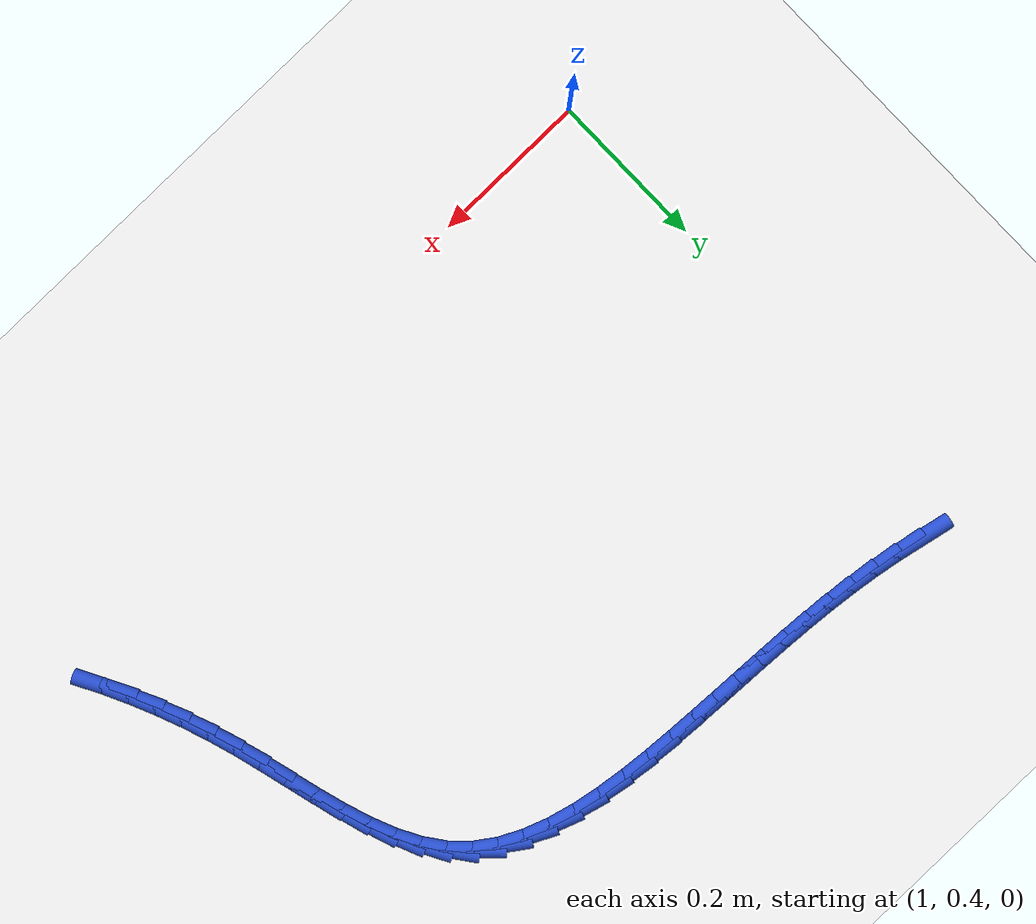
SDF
<sdf version="1.6">
 <world name="default">
  <model name="ground_plane">
   <static>1</static>
   <link name="link">
    <collision name="collision">
     <geometry><plane><normal>0 0 1</normal><size>100 100</size></plane></geometry>
     <surface><friction><ode><mu>100</mu><mu2>50</mu2></ode></friction></surface>
    </collision>
    <visual name="visual">
     <cast_shadows>0</cast_shadows>
     <geometry><plane><normal>0 0 1</normal><size>100 100</size></plane></geometry>
     <material>
      <script><uri>file://media/materials/scripts/gazebo.material</uri><name>Gazebo/WhiteGlow</name></script>
     </material>
    </visual>
   </link>
  </model>
  <model name="line">
   <link name="link_49">
    <pose>1.0536152017967901 1.056178405500555 0.01 0 1.57 -0.2039931108099421</pose>
    <collision name="collision">
     <geometry><cylinder><radius>0.01</radius><length>0.08</length></cylinder></geometry>
    </collision>
    <visual name="visual">
     <material>
      <script><name>Gazebo/Blue</name><uri>file://media/materials/scripts/gazebo.material</uri></script>
     </material>
     <geometry><cylinder><radius>0.01</radius><length>0.08</length></cylinder></geometry>
    </visual>
   </link>
   <link name="link_50">
    <pose>1.0871136379834587 1.0492485632865867 0.01 0 1.57 -0.16918378252128569</pose>
    <collision name="collision">
     <geometry><cylinder><radius>0.01</radius><length>0.08</length></cylinder></geometry>
    </collision>
    <visual name="visual">
     <material>
      <script><name>Gazebo/Blue</name><uri>file://media/materials/scripts/gazebo.material</uri></script>
     </material>
     <geometry><cylinder><radius>0.01</radius><length>0.08</length></cylinder></geometry>
    </visual>
   </link>
   <link name="link_51">
    <pose>1.1204045993406824 1.0435619120764832 0.01 0 1.57 -0.13534197490541341</pose>
    <collision name="collision">
     <geometry><cylinder><radius>0.01</radius><length>0.08</length></cylinder></geometry>
    </collision>
    <visual name="visual">
     <material>
      <script><name>Gazebo/Blue</name><uri>file://media/materials/scripts/gazebo.material</uri></script>
     </material>
     <geometry><cylinder><radius>0.01</radius><length>0.08</length></cylinder></geometry>
    </visual>
   </link>
   <link name="link_52">
    <pose>1.1535728276952377 1.0390452468809621 0.01 0 1.57 -0.10612881740557806</pose>
    <collision name="collision">
     <geometry><cylinder><radius>0.01</radius><length>0.08</length></cylinder></geometry>
    </collision>
    <visual name="visual">
     <material>
      <script><name>Gazebo/Blue</name><uri>file://media/materials/scripts/gazebo.material</uri></script>
     </material>
     <geometry><cylinder><radius>0.01</radius><length>0.08</length></cylinder></geometry>
    </visual>
   </link>
   <link name="link_53">
    <pose>1.186726121602748 1.0355134571384534 0.01 0 1.57 -0.08199142908092878</pose>
    <collision name="collision">
     <geometry><cylinder><radius>0.01</radius><length>0.08</length></cylinder></geometry>
    </collision>
    <visual name="visual">
     <material>
      <script><name>Gazebo/Blue</name><uri>file://media/materials/scripts/gazebo.material</uri></script>
     </material>
     <geometry><cylinder><radius>0.01</radius><length>0.08</length></cylinder></geometry>
    </visual>
   </link>
   <link name="link_54">
    <pose>1.2199722796188368 1.0327814322873867 0.01 0 1.57 -0.06322121916378484</pose>
    <collision name="collision">
     <geometry><cylinder><radius>0.01</radius><length>0.08</length></cylinder></geometry>
    </collision>
    <visual name="visual">
     <material>
      <script><name>Gazebo/Blue</name><uri>file://media/materials/scripts/gazebo.material</uri></script>
     </material>
     <geometry><cylinder><radius>0.01</radius><length>0.08</length></cylinder></geometry>
    </visual>
   </link>
   <link name="link_55">
    <pose>1.2534191002991268 1.0306640617661924 0.01 0 1.57 -0.049960247332221645</pose>
    <collision name="collision">
     <geometry><cylinder><radius>0.01</radius><length>0.08</length></cylinder></geometry>
    </collision>
    <visual name="visual">
     <material>
      <script><name>Gazebo/Blue</name><uri>file://media/materials/scripts/gazebo.material</uri></script>
     </material>
     <geometry><cylinder><radius>0.01</radius><length>0.08</length></cylinder></geometry>
    </visual>
   </link>
   <link name="link_56">
    <pose>1.2871743821992425 1.0289762350132998 0.01 0 1.57 -0.04221454360005864</pose>
    <collision name="collision">
     <geometry><cylinder><radius>0.01</radius><length>0.08</length></cylinder></geometry>
    </collision>
    <visual name="visual">
     <material>
      <script><name>Gazebo/Blue</name><uri>file://media/materials/scripts/gazebo.material</uri></script>
     </material>
     <geometry><cylinder><radius>0.01</radius><length>0.08</length></cylinder></geometry>
    </visual>
   </link>
   <link name="link_57">
    <pose>1.321345923874806 1.0275328414671394 0.01 0 1.57 -0.03987068725952909</pose>
    <collision name="collision">
     <geometry><cylinder><radius>0.01</radius><length>0.08</length></cylinder></geometry>
    </collision>
    <visual name="visual">
     <material>
      <script><name>Gazebo/Blue</name><uri>file://media/materials/scripts/gazebo.material</uri></script>
     </material>
     <geometry><cylinder><radius>0.01</radius><length>0.08</length></cylinder></geometry>
    </visual>
   </link>
   <link name="link_58">
    <pose>1.356041523881441 1.0261487705661412 0.01 0 1.57 -0.04271296731066947</pose>
    <collision name="collision">
     <geometry><cylinder><radius>0.01</radius><length>0.08</length></cylinder></geometry>
    </collision>
    <visual name="visual">
     <material>
      <script><name>Gazebo/Blue</name><uri>file://media/materials/scripts/gazebo.material</uri></script>
     </material>
     <geometry><cylinder><radius>0.01</radius><length>0.08</length></cylinder></geometry>
    </visual>
   </link>
   <link name="link_59">
    <pose>1.3913689807747713 1.0246389117487353 0.01 0 1.57 -0.0504639386554917</pose>
    <collision name="collision">
     <geometry><cylinder><radius>0.01</radius><length>0.08</length></cylinder></geometry>
    </collision>
    <visual name="visual">
     <material>
      <script><name>Gazebo/Blue</name><uri>file://media/materials/scripts/gazebo.material</uri></script>
     </material>
     <geometry><cylinder><radius>0.01</radius><length>0.08</length></cylinder></geometry>
    </visual>
   </link>
   <link name="link_60">
    <pose>1.427433895713201 1.0228173875944273 0.01 0 1.57 -0.06518867235303466</pose>
    <collision name="collision">
     <geometry><cylinder><radius>0.01</radius><length>0.08</length></cylinder></geometry>
    </collision>
    <visual name="visual">
     <material>
      <script><name>Gazebo/Blue</name><uri>file://media/materials/scripts/gazebo.material</uri></script>
     </material>
     <geometry><cylinder><radius>0.01</radius><length>0.08</length></cylinder></geometry>
    </visual>
   </link>
   <link name="link_61">
    <pose>1.4641238244778052 1.0204222260913827 0.01 0 1.57 -0.0913240121081484</pose>
    <collision name="collision">
     <geometry><cylinder><radius>0.01</radius><length>0.08</length></cylinder></geometry>
    </collision>
    <visual name="visual">
     <material>
      <script><name>Gazebo/Blue</name><uri>file://media/materials/scripts/gazebo.material</uri></script>
     </material>
     <geometry><cylinder><radius>0.01</radius><length>0.08</length></cylinder></geometry>
    </visual>
   </link>
   <link name="link_62">
    <pose>1.500926409776979 1.0170518915176316 0.01 0 1.57 -0.13022632659403668</pose>
    <collision name="collision">
     <geometry><cylinder><radius>0.01</radius><length>0.08</length></cylinder></geometry>
    </collision>
    <visual name="visual">
     <material>
      <script><name>Gazebo/Blue</name><uri>file://media/materials/scripts/gazebo.material</uri></script>
     </material>
     <geometry><cylinder><radius>0.01</radius><length>0.08</length></cylinder></geometry>
    </visual>
   </link>
   <link name="link_63">
    <pose>1.5372864731412006 1.0122899041974547 0.01 0 1.57 -0.18369951504137735</pose>
    <collision name="collision">
     <geometry><cylinder><radius>0.01</radius><length>0.08</length></cylinder></geometry>
    </collision>
    <visual name="visual">
     <material>
      <script><name>Gazebo/Blue</name><uri>file://media/materials/scripts/gazebo.material</uri></script>
     </material>
     <geometry><cylinder><radius>0.01</radius><length>0.08</length></cylinder></geometry>
    </visual>
   </link>
   <link name="link_64">
    <pose>1.5726488361009476 1.0057197844551313 0.01 0 1.57 -0.2544862424062755</pose>
    <collision name="collision">
     <geometry><cylinder><radius>0.01</radius><length>0.08</length></cylinder></geometry>
    </collision>
    <visual name="visual">
     <material>
      <script><name>Gazebo/Blue</name><uri>file://media/materials/scripts/gazebo.material</uri></script>
     </material>
     <geometry><cylinder><radius>0.01</radius><length>0.08</length></cylinder></geometry>
    </visual>
   </link>
   <link name="link_65">
    <pose>1.6064583201866989 0.9969250526149419 0.01 0 1.57 -0.34620636434738233</pose>
    <collision name="collision">
     <geometry><cylinder><radius>0.01</radius><length>0.08</length></cylinder></geometry>
    </collision>
    <visual name="visual">
     <material>
      <script><name>Gazebo/Blue</name><uri>file://media/materials/scripts/gazebo.material</uri></script>
     </material>
     <geometry><cylinder><radius>0.01</radius><length>0.08</length></cylinder></geometry>
    </visual>
   </link>
   <link name="link_66">
    <pose>1.6381597469289322 0.985489229001167 0.01 0 1.57 -0.4629393142172763</pose>
    <collision name="collision">
     <geometry><cylinder><radius>0.01</radius><length>0.08</length></cylinder></geometry>
    </collision>
    <visual name="visual">
     <material>
      <script><name>Gazebo/Blue</name><uri>file://media/materials/scripts/gazebo.material</uri></script>
     </material>
     <geometry><cylinder><radius>0.01</radius><length>0.08</length></cylinder></geometry>
    </visual>
   </link>
   <link name="link_67">
    <pose>1.6671979378581256 0.9709958339380858 0.01 0 1.57 -0.6079549868972415</pose>
    <collision name="collision">
     <geometry><cylinder><radius>0.01</radius><length>0.08</length></cylinder></geometry>
    </collision>
    <visual name="visual">
     <material>
      <script><name>Gazebo/Blue</name><uri>file://media/materials/scripts/gazebo.material</uri></script>
     </material>
     <geometry><cylinder><radius>0.01</radius><length>0.08</length></cylinder></geometry>
    </visual>
   </link>
   <link name="link_68">
    <pose>1.693017714504758 0.9530283877499792 0.01 0 1.57 -0.779305313178607</pose>
    <collision name="collision">
     <geometry><cylinder><radius>0.01</radius><length>0.08</length></cylinder></geometry>
    </collision>
    <visual name="visual">
     <material>
      <script><name>Gazebo/Blue</name><uri>file://media/materials/scripts/gazebo.material</uri></script>
     </material>
     <geometry><cylinder><radius>0.01</radius><length>0.08</length></cylinder></geometry>
    </visual>
   </link>
   <link name="link_69">
    <pose>1.7151061495331201 0.9312074890259554 0.01 0 1.57 -0.9443591813821003</pose>
    <collision name="collision">
     <geometry><cylinder><radius>0.01</radius><length>0.08</length></cylinder></geometry>
    </collision>
    <visual name="visual">
     <material>
      <script><name>Gazebo/Blue</name><uri>file://media/materials/scripts/gazebo.material</uri></script>
     </material>
     <geometry><cylinder><radius>0.01</radius><length>0.08</length></cylinder></geometry>
    </visual>
   </link>
   <link name="link_70">
    <pose>1.7335681501948357 0.9056959285374817 0.01 0 1.57 -1.0770297693540212</pose>
    <collision name="collision">
     <geometry><cylinder><radius>0.01</radius><length>0.08</length></cylinder></geometry>
    </collision>
    <visual name="visual">
     <material>
      <script><name>Gazebo/Blue</name><uri>file://media/materials/scripts/gazebo.material</uri></script>
     </material>
     <geometry><cylinder><radius>0.01</radius><length>0.08</length></cylinder></geometry>
    </visual>
   </link>
   <link name="link_71">
    <pose>1.7489769912309125 0.877067521618944 0.01 0 1.57 -1.177188439750993</pose>
    <collision name="collision">
     <geometry><cylinder><radius>0.01</radius><length>0.08</length></cylinder></geometry>
    </collision>
    <visual name="visual">
     <material>
      <script><name>Gazebo/Blue</name><uri>file://media/materials/scripts/gazebo.material</uri></script>
     </material>
     <geometry><cylinder><radius>0.01</radius><length>0.08</length></cylinder></geometry>
    </visual>
   </link>
   <link name="link_72">
    <pose>1.7619175843986281 0.8459062958838348 0.01 0 1.57 -1.248486340100661</pose>
    <collision name="collision">
     <geometry><cylinder><radius>0.01</radius><length>0.08</length></cylinder></geometry>
    </collision>
    <visual name="visual">
     <material>
      <script><name>Gazebo/Blue</name><uri>file://media/materials/scripts/gazebo.material</uri></script>
     </material>
     <geometry><cylinder><radius>0.01</radius><length>0.08</length></cylinder></geometry>
    </visual>
   </link>
   <link name="link_73">
    <pose>1.7729748414552604 0.8127962789456478 0.01 0 1.57 -1.2949415692792754</pose>
    <collision name="collision">
     <geometry><cylinder><radius>0.01</radius><length>0.08</length></cylinder></geometry>
    </collision>
    <visual name="visual">
     <material>
      <script><name>Gazebo/Blue</name><uri>file://media/materials/scripts/gazebo.material</uri></script>
     </material>
     <geometry><cylinder><radius>0.01</radius><length>0.08</length></cylinder></geometry>
    </visual>
   </link>
   <link name="link_74">
    <pose>1.7827336741580881 0.7783214984178767 0.01 0 1.57 -1.3196487538083654</pose>
    <collision name="collision">
     <geometry><cylinder><radius>0.01</radius><length>0.08</length></cylinder></geometry>
    </collision>
    <visual name="visual">
     <material>
      <script><name>Gazebo/Blue</name><uri>file://media/materials/scripts/gazebo.material</uri></script>
     </material>
     <geometry><cylinder><radius>0.01</radius><length>0.08</length></cylinder></geometry>
    </visual>
   </link>
   <link name="link_75">
    <pose>1.7917789942643898 0.7430659819140146 0.01 0 1.57 -1.3243935391001889</pose>
    <collision name="collision">
     <geometry><cylinder><radius>0.01</radius><length>0.08</length></cylinder></geometry>
    </collision>
    <visual name="visual">
     <material>
      <script><name>Gazebo/Blue</name><uri>file://media/materials/scripts/gazebo.material</uri></script>
     </material>
     <geometry><cylinder><radius>0.01</radius><length>0.08</length></cylinder></geometry>
    </visual>
   </link>
   <link name="link_76">
    <pose>1.8006957135314434 0.7076137570475554 0.01 0 1.57 -1.3095979266813407</pose>
    <collision name="collision">
     <geometry><cylinder><radius>0.01</radius><length>0.08</length></cylinder></geometry>
    </collision>
    <visual name="visual">
     <material>
      <script><name>Gazebo/Blue</name><uri>file://media/materials/scripts/gazebo.material</uri></script>
     </material>
     <geometry><cylinder><radius>0.01</radius><length>0.08</length></cylinder></geometry>
    </visual>
   </link>
   <link name="link_77">
    <pose>1.8100687437165273 0.6725488514319922 0.01 0 1.57 -1.2765564632398056</pose>
    <collision name="collision">
     <geometry><cylinder><radius>0.01</radius><length>0.08</length></cylinder></geometry>
    </collision>
    <visual name="visual">
     <material>
      <script><name>Gazebo/Blue</name><uri>file://media/materials/scripts/gazebo.material</uri></script>
     </material>
     <geometry><cylinder><radius>0.01</radius><length>0.08</length></cylinder></geometry>
    </visual>
   </link>
   <link name="link_78">
    <pose>1.8204207873731268 0.6383877595170124 0.01 0 1.57 -1.2380607180225067</pose>
    <collision name="collision">
     <geometry><cylinder><radius>0.01</radius><length>0.08</length></cylinder></geometry>
    </collision>
    <visual name="visual">
     <material>
      <script><name>Gazebo/Blue</name><uri>file://media/materials/scripts/gazebo.material</uri></script>
     </material>
     <geometry><cylinder><radius>0.01</radius><length>0.08</length></cylinder></geometry>
    </visual>
   </link>
   <link name="link_79">
    <pose>1.831882549887688 0.6052214308605592 0.01 0 1.57 -1.1996407551962571</pose>
    <collision name="collision">
     <geometry><cylinder><radius>0.01</radius><length>0.08</length></cylinder></geometry>
    </collision>
    <visual name="visual">
     <material>
      <script><name>Gazebo/Blue</name><uri>file://media/materials/scripts/gazebo.material</uri></script>
     </material>
     <geometry><cylinder><radius>0.01</radius><length>0.08</length></cylinder></geometry>
    </visual>
   </link>
   <link name="link_80">
    <pose>1.8444324484282018 0.5729754937405148 0.01 0 1.57 -1.1616385440884387</pose>
    <collision name="collision">
     <geometry><cylinder><radius>0.01</radius><length>0.08</length></cylinder></geometry>
    </collision>
    <visual name="visual">
     <material>
      <script><name>Gazebo/Blue</name><uri>file://media/materials/scripts/gazebo.material</uri></script>
     </material>
     <geometry><cylinder><radius>0.01</radius><length>0.08</length></cylinder></geometry>
    </visual>
   </link>
   <link name="link_81">
    <pose>1.8580485618395497 0.5415752091574344 0.01 0 1.57 -1.124383200046372</pose>
    <collision name="collision">
     <geometry><cylinder><radius>0.01</radius><length>0.08</length></cylinder></geometry>
    </collision>
    <visual name="visual">
     <material>
      <script><name>Gazebo/Blue</name><uri>file://media/materials/scripts/gazebo.material</uri></script>
     </material>
     <geometry><cylinder><radius>0.01</radius><length>0.08</length></cylinder></geometry>
    </visual>
   </link>
   <link name="link_82">
    <pose>1.872708968966611 0.5109458381118727 0.01 0 1.57 -1.0881916434885284</pose>
    <collision name="collision">
     <geometry><cylinder><radius>0.01</radius><length>0.08</length></cylinder></geometry>
    </collision>
    <visual name="visual">
     <material>
      <script><name>Gazebo/Blue</name><uri>file://media/materials/scripts/gazebo.material</uri></script>
     </material>
     <geometry><cylinder><radius>0.01</radius><length>0.08</length></cylinder></geometry>
    </visual>
   </link>
  </model>
 </world>
</sdf>
